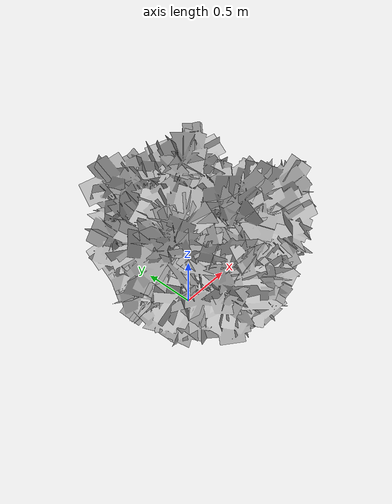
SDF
<?xml version="1.0" ?>
<sdf version="1.6">
  <model name="bush5">
    <static>1</static>
    <link name="link">
      <visual name="branch">
        <geometry>
          <mesh>
            <uri>model://bush5/meshes/OC29_5.obj</uri>
          </mesh>
        </geometry>
       <transparency>0.000</transparency>
        <cast_shadows>1</cast_shadows>
      </visual>
    </link>
  </model>
</sdf>
